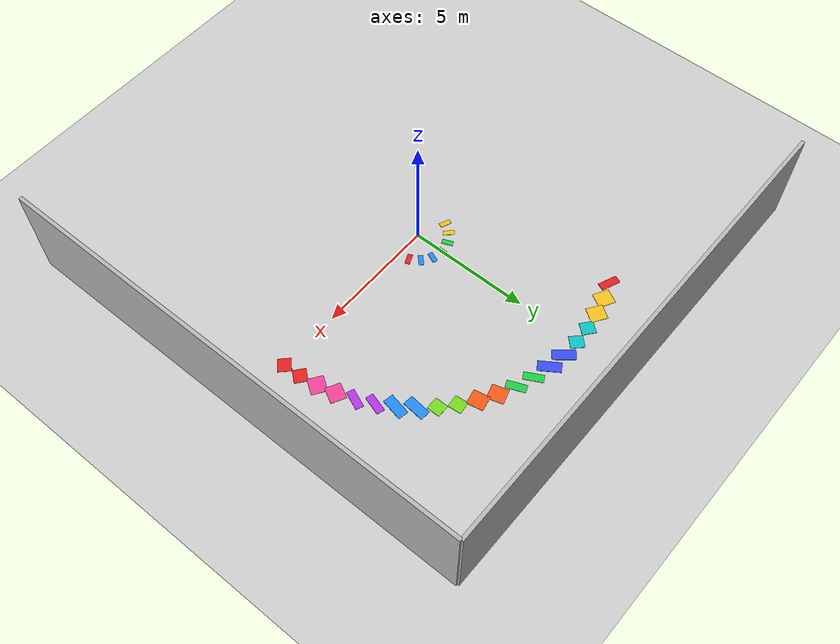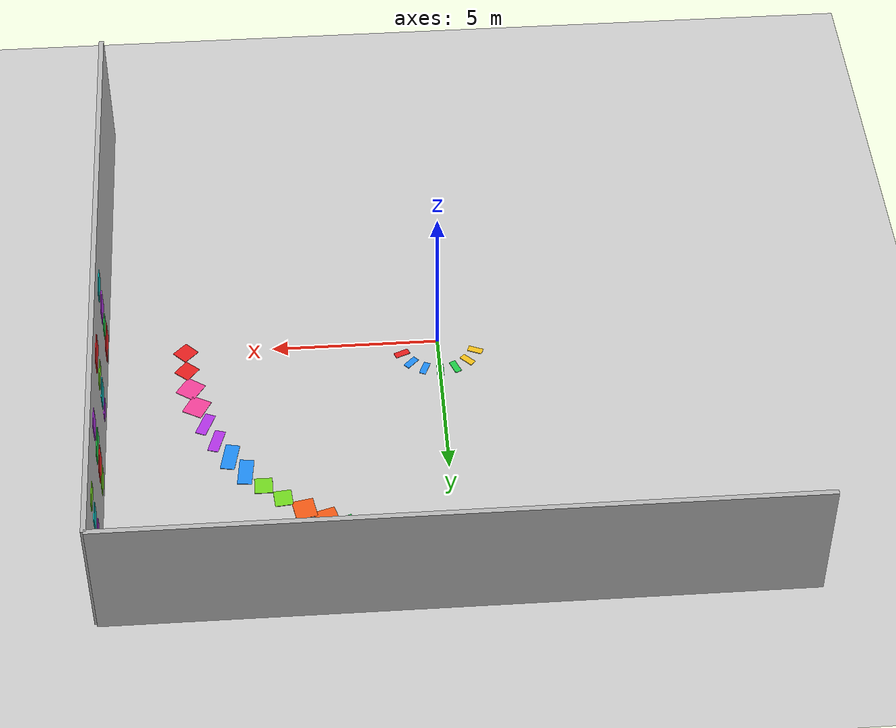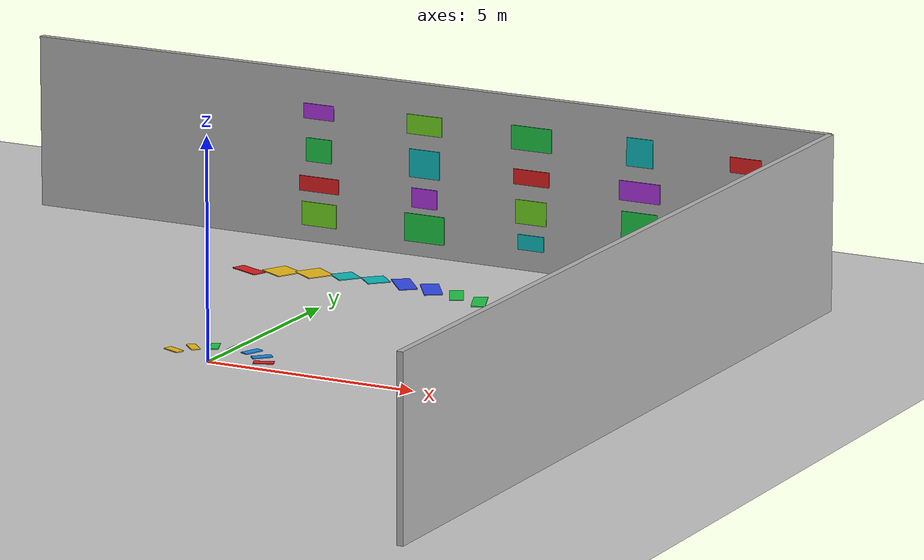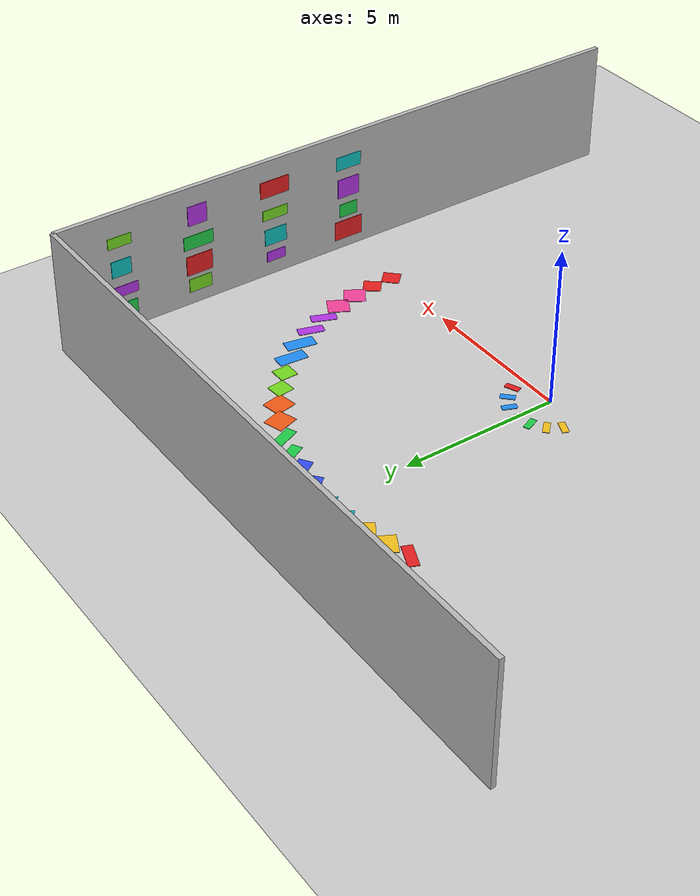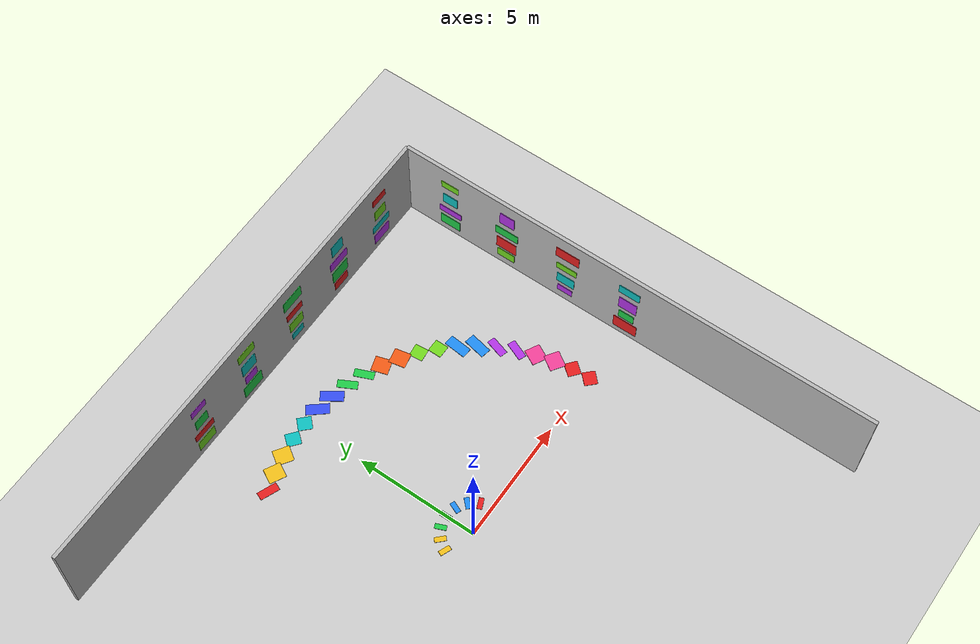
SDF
<sdf version="1.9">
 <world name="vio_marker_arena_double">
  <model name="ground_plane">
   <static>true</static>
   <link name="link">
    <collision name="collision">
     <geometry><plane><normal>0 0 1</normal><size>1 1</size></plane></geometry>
    </collision>
    <visual name="visual">
     <geometry><plane><normal>0 0 1</normal><size>500 500</size></plane></geometry>
     <material>
      <ambient>0.8 0.8 0.8 1</ambient>
      <diffuse>0.8 0.8 0.8 1</diffuse>
      <specular>0.8 0.8 0.8 1</specular>
     </material>
    </visual>
    <inertial>
     <mass>1</mass>
     <inertia><ixx>1</ixx><ixy>0</ixy><ixz>0</ixz><iyy>1</iyy><iyz>0</iyz><izz>1</izz></inertia>
    </inertial>
   </link>
  </model>
  <model name="vio_wall_north">
   <static>true</static>
   <pose>0.0000 10.0000 2.0000 0.0000 0.0000 0.0000</pose>
   <link name="link">
    <collision name="collision"><geometry><box><size>20.0000 0.1500 4.0000</size></box></geometry></collision>
    <visual name="visual">
     <geometry><box><size>20.0000 0.1500 4.0000</size></box></geometry>
     <material>
      <ambient>0.720 0.720 0.720 1.000</ambient>
      <diffuse>0.720 0.720 0.720 1.000</diffuse>
      <specular>0.10 0.10 0.10 1</specular>
      <emissive>0 0 0 1</emissive>
     </material>
    </visual>
   </link>
  </model>
  <model name="vio_wall_east">
   <static>true</static>
   <pose>10.0000 0.0000 2.0000 0.0000 0.0000 0.0000</pose>
   <link name="link">
    <collision name="collision"><geometry><box><size>0.1500 20.0000 4.0000</size></box></geometry></collision>
    <visual name="visual">
     <geometry><box><size>0.1500 20.0000 4.0000</size></box></geometry>
     <material>
      <ambient>0.720 0.720 0.720 1.000</ambient>
      <diffuse>0.720 0.720 0.720 1.000</diffuse>
      <specular>0.10 0.10 0.10 1</specular>
      <emissive>0 0 0 1</emissive>
     </material>
    </visual>
   </link>
  </model>
  <model name="vio_panel_north_0_2">
   <static>true</static>
   <pose>-2.7000 9.9190 0.6500 0.0000 0.0000 0.0000</pose>
   <link name="link">
    <visual name="visual">
     <geometry><box><size>0.8900 0.0350 0.5500</size></box></geometry>
     <material>
      <ambient>0.450 0.850 0.120 1.000</ambient>
      <diffuse>0.450 0.850 0.120 1.000</diffuse>
      <specular>0.10 0.10 0.10 1</specular>
      <emissive>0 0 0 1</emissive>
     </material>
    </visual>
   </link>
  </model>
  <model name="vio_panel_north_0_3">
   <static>true</static>
   <pose>0.0000 9.9190 0.6500 0.0000 0.0000 0.0000</pose>
   <link name="link">
    <visual name="visual">
     <geometry><box><size>1.0100 0.0350 0.6500</size></box></geometry>
     <material>
      <ambient>0.120 0.800 0.280 1.000</ambient>
      <diffuse>0.120 0.800 0.280 1.000</diffuse>
      <specular>0.10 0.10 0.10 1</specular>
      <emissive>0 0 0 1</emissive>
     </material>
    </visual>
   </link>
  </model>
  <model name="vio_panel_north_0_4">
   <static>true</static>
   <pose>2.7000 9.9190 0.6500 0.0000 0.0000 0.0000</pose>
   <link name="link">
    <visual name="visual">
     <geometry><box><size>0.6500 0.0350 0.3500</size></box></geometry>
     <material>
      <ambient>0.050 0.750 0.750 1.000</ambient>
      <diffuse>0.050 0.750 0.750 1.000</diffuse>
      <specular>0.10 0.10 0.10 1</specular>
      <emissive>0 0 0 1</emissive>
     </material>
    </visual>
   </link>
  </model>
  <model name="vio_panel_north_0_5">
   <static>true</static>
   <pose>5.4000 9.9190 0.6500 0.0000 0.0000 0.0000</pose>
   <link name="link">
    <visual name="visual">
     <geometry><box><size>0.7700 0.0350 0.4500</size></box></geometry>
     <material>
      <ambient>0.900 0.120 0.120 1.000</ambient>
      <diffuse>0.900 0.120 0.120 1.000</diffuse>
      <specular>0.10 0.10 0.10 1</specular>
      <emissive>0 0 0 1</emissive>
     </material>
    </visual>
   </link>
  </model>
  <model name="vio_panel_north_0_6">
   <static>true</static>
   <pose>8.0000 9.9190 0.6500 0.0000 0.0000 0.0000</pose>
   <link name="link">
    <visual name="visual">
     <geometry><box><size>0.8900 0.0350 0.5500</size></box></geometry>
     <material>
      <ambient>0.700 0.200 0.900 1.000</ambient>
      <diffuse>0.700 0.200 0.900 1.000</diffuse>
      <specular>0.10 0.10 0.10 1</specular>
      <emissive>0 0 0 1</emissive>
     </material>
    </visual>
   </link>
  </model>
  <model name="vio_panel_north_1_2">
   <static>true</static>
   <pose>-2.7000 9.9190 1.3500 0.0000 0.0000 0.0000</pose>
   <link name="link">
    <visual name="visual">
     <geometry><box><size>1.0100 0.0350 0.3500</size></box></geometry>
     <material>
      <ambient>0.900 0.120 0.120 1.000</ambient>
      <diffuse>0.900 0.120 0.120 1.000</diffuse>
      <specular>0.10 0.10 0.10 1</specular>
      <emissive>0 0 0 1</emissive>
     </material>
    </visual>
   </link>
  </model>
  <model name="vio_panel_north_1_3">
   <static>true</static>
   <pose>0.0000 9.9190 1.3500 0.0000 0.0000 0.0000</pose>
   <link name="link">
    <visual name="visual">
     <geometry><box><size>0.6500 0.0350 0.4500</size></box></geometry>
     <material>
      <ambient>0.700 0.200 0.900 1.000</ambient>
      <diffuse>0.700 0.200 0.900 1.000</diffuse>
      <specular>0.10 0.10 0.10 1</specular>
      <emissive>0 0 0 1</emissive>
     </material>
    </visual>
   </link>
  </model>
  <model name="vio_panel_north_1_4">
   <static>true</static>
   <pose>2.7000 9.9190 1.3500 0.0000 0.0000 0.0000</pose>
   <link name="link">
    <visual name="visual">
     <geometry><box><size>0.7700 0.0350 0.5500</size></box></geometry>
     <material>
      <ambient>0.450 0.850 0.120 1.000</ambient>
      <diffuse>0.450 0.850 0.120 1.000</diffuse>
      <specular>0.10 0.10 0.10 1</specular>
      <emissive>0 0 0 1</emissive>
     </material>
    </visual>
   </link>
  </model>
  <model name="vio_panel_north_1_5">
   <static>true</static>
   <pose>5.4000 9.9190 1.3500 0.0000 0.0000 0.0000</pose>
   <link name="link">
    <visual name="visual">
     <geometry><box><size>0.8900 0.0350 0.6500</size></box></geometry>
     <material>
      <ambient>0.120 0.800 0.280 1.000</ambient>
      <diffuse>0.120 0.800 0.280 1.000</diffuse>
      <specular>0.10 0.10 0.10 1</specular>
      <emissive>0 0 0 1</emissive>
     </material>
    </visual>
   </link>
  </model>
  <model name="vio_panel_north_1_6">
   <static>true</static>
   <pose>8.0000 9.9190 1.3500 0.0000 0.0000 0.0000</pose>
   <link name="link">
    <visual name="visual">
     <geometry><box><size>1.0100 0.0350 0.3500</size></box></geometry>
     <material>
      <ambient>0.050 0.750 0.750 1.000</ambient>
      <diffuse>0.050 0.750 0.750 1.000</diffuse>
      <specular>0.10 0.10 0.10 1</specular>
      <emissive>0 0 0 1</emissive>
     </material>
    </visual>
   </link>
  </model>
  <model name="vio_panel_north_2_2">
   <static>true</static>
   <pose>-2.7000 9.9190 2.1500 0.0000 0.0000 0.0000</pose>
   <link name="link">
    <visual name="visual">
     <geometry><box><size>0.6500 0.0350 0.5500</size></box></geometry>
     <material>
      <ambient>0.120 0.800 0.280 1.000</ambient>
      <diffuse>0.120 0.800 0.280 1.000</diffuse>
      <specular>0.10 0.10 0.10 1</specular>
      <emissive>0 0 0 1</emissive>
     </material>
    </visual>
   </link>
  </model>
  <model name="vio_panel_north_2_3">
   <static>true</static>
   <pose>0.0000 9.9190 2.1500 0.0000 0.0000 0.0000</pose>
   <link name="link">
    <visual name="visual">
     <geometry><box><size>0.7700 0.0350 0.6500</size></box></geometry>
     <material>
      <ambient>0.050 0.750 0.750 1.000</ambient>
      <diffuse>0.050 0.750 0.750 1.000</diffuse>
      <specular>0.10 0.10 0.10 1</specular>
      <emissive>0 0 0 1</emissive>
     </material>
    </visual>
   </link>
  </model>
  <model name="vio_panel_north_2_4">
   <static>true</static>
   <pose>2.7000 9.9190 2.1500 0.0000 0.0000 0.0000</pose>
   <link name="link">
    <visual name="visual">
     <geometry><box><size>0.8900 0.0350 0.3500</size></box></geometry>
     <material>
      <ambient>0.900 0.120 0.120 1.000</ambient>
      <diffuse>0.900 0.120 0.120 1.000</diffuse>
      <specular>0.10 0.10 0.10 1</specular>
      <emissive>0 0 0 1</emissive>
     </material>
    </visual>
   </link>
  </model>
  <model name="vio_panel_north_2_5">
   <static>true</static>
   <pose>5.4000 9.9190 2.1500 0.0000 0.0000 0.0000</pose>
   <link name="link">
    <visual name="visual">
     <geometry><box><size>1.0100 0.0350 0.4500</size></box></geometry>
     <material>
      <ambient>0.700 0.200 0.900 1.000</ambient>
      <diffuse>0.700 0.200 0.900 1.000</diffuse>
      <specular>0.10 0.10 0.10 1</specular>
      <emissive>0 0 0 1</emissive>
     </material>
    </visual>
   </link>
  </model>
  <model name="vio_panel_north_2_6">
   <static>true</static>
   <pose>8.0000 9.9190 2.1500 0.0000 0.0000 0.0000</pose>
   <link name="link">
    <visual name="visual">
     <geometry><box><size>0.6500 0.0350 0.5500</size></box></geometry>
     <material>
      <ambient>0.450 0.850 0.120 1.000</ambient>
      <diffuse>0.450 0.850 0.120 1.000</diffuse>
      <specular>0.10 0.10 0.10 1</specular>
      <emissive>0 0 0 1</emissive>
     </material>
    </visual>
   </link>
  </model>
  <model name="vio_panel_north_3_2">
   <static>true</static>
   <pose>-2.7000 9.9190 3.0500 0.0000 0.0000 0.0000</pose>
   <link name="link">
    <visual name="visual">
     <geometry><box><size>0.7700 0.0350 0.3500</size></box></geometry>
     <material>
      <ambient>0.700 0.200 0.900 1.000</ambient>
      <diffuse>0.700 0.200 0.900 1.000</diffuse>
      <specular>0.10 0.10 0.10 1</specular>
      <emissive>0 0 0 1</emissive>
     </material>
    </visual>
   </link>
  </model>
  <model name="vio_panel_north_3_3">
   <static>true</static>
   <pose>0.0000 9.9190 3.0500 0.0000 0.0000 0.0000</pose>
   <link name="link">
    <visual name="visual">
     <geometry><box><size>0.8900 0.0350 0.4500</size></box></geometry>
     <material>
      <ambient>0.450 0.850 0.120 1.000</ambient>
      <diffuse>0.450 0.850 0.120 1.000</diffuse>
      <specular>0.10 0.10 0.10 1</specular>
      <emissive>0 0 0 1</emissive>
     </material>
    </visual>
   </link>
  </model>
  <model name="vio_panel_north_3_4">
   <static>true</static>
   <pose>2.7000 9.9190 3.0500 0.0000 0.0000 0.0000</pose>
   <link name="link">
    <visual name="visual">
     <geometry><box><size>1.0100 0.0350 0.5500</size></box></geometry>
     <material>
      <ambient>0.120 0.800 0.280 1.000</ambient>
      <diffuse>0.120 0.800 0.280 1.000</diffuse>
      <specular>0.10 0.10 0.10 1</specular>
      <emissive>0 0 0 1</emissive>
     </material>
    </visual>
   </link>
  </model>
  <model name="vio_panel_north_3_5">
   <static>true</static>
   <pose>5.4000 9.9190 3.0500 0.0000 0.0000 0.0000</pose>
   <link name="link">
    <visual name="visual">
     <geometry><box><size>0.6500 0.0350 0.6500</size></box></geometry>
     <material>
      <ambient>0.050 0.750 0.750 1.000</ambient>
      <diffuse>0.050 0.750 0.750 1.000</diffuse>
      <specular>0.10 0.10 0.10 1</specular>
      <emissive>0 0 0 1</emissive>
     </material>
    </visual>
   </link>
  </model>
  <model name="vio_panel_north_3_6">
   <static>true</static>
   <pose>8.0000 9.9190 3.0500 0.0000 0.0000 0.0000</pose>
   <link name="link">
    <visual name="visual">
     <geometry><box><size>0.7700 0.0350 0.3500</size></box></geometry>
     <material>
      <ambient>0.900 0.120 0.120 1.000</ambient>
      <diffuse>0.900 0.120 0.120 1.000</diffuse>
      <specular>0.10 0.10 0.10 1</specular>
      <emissive>0 0 0 1</emissive>
     </material>
    </visual>
   </link>
  </model>
  <model name="vio_panel_east_0_3">
   <static>true</static>
   <pose>9.9190 0.0000 0.6500 0.0000 0.0000 0.0000</pose>
   <link name="link">
    <visual name="visual">
     <geometry><box><size>0.0350 1.0100 0.6500</size></box></geometry>
     <material>
      <ambient>0.900 0.120 0.120 1.000</ambient>
      <diffuse>0.900 0.120 0.120 1.000</diffuse>
      <specular>0.10 0.10 0.10 1</specular>
      <emissive>0 0 0 1</emissive>
     </material>
    </visual>
   </link>
  </model>
  <model name="vio_panel_east_0_4">
   <static>true</static>
   <pose>9.9190 2.7000 0.6500 0.0000 0.0000 0.0000</pose>
   <link name="link">
    <visual name="visual">
     <geometry><box><size>0.0350 0.6500 0.3500</size></box></geometry>
     <material>
      <ambient>0.700 0.200 0.900 1.000</ambient>
      <diffuse>0.700 0.200 0.900 1.000</diffuse>
      <specular>0.10 0.10 0.10 1</specular>
      <emissive>0 0 0 1</emissive>
     </material>
    </visual>
   </link>
  </model>
  <model name="vio_panel_east_0_5">
   <static>true</static>
   <pose>9.9190 5.4000 0.6500 0.0000 0.0000 0.0000</pose>
   <link name="link">
    <visual name="visual">
     <geometry><box><size>0.0350 0.7700 0.4500</size></box></geometry>
     <material>
      <ambient>0.450 0.850 0.120 1.000</ambient>
      <diffuse>0.450 0.850 0.120 1.000</diffuse>
      <specular>0.10 0.10 0.10 1</specular>
      <emissive>0 0 0 1</emissive>
     </material>
    </visual>
   </link>
  </model>
  <model name="vio_panel_east_0_6">
   <static>true</static>
   <pose>9.9190 8.0000 0.6500 0.0000 0.0000 0.0000</pose>
   <link name="link">
    <visual name="visual">
     <geometry><box><size>0.0350 0.8900 0.5500</size></box></geometry>
     <material>
      <ambient>0.120 0.800 0.280 1.000</ambient>
      <diffuse>0.120 0.800 0.280 1.000</diffuse>
      <specular>0.10 0.10 0.10 1</specular>
      <emissive>0 0 0 1</emissive>
     </material>
    </visual>
   </link>
  </model>
  <model name="vio_panel_east_1_3">
   <static>true</static>
   <pose>9.9190 0.0000 1.3500 0.0000 0.0000 0.0000</pose>
   <link name="link">
    <visual name="visual">
     <geometry><box><size>0.0350 0.6500 0.4500</size></box></geometry>
     <material>
      <ambient>0.120 0.800 0.280 1.000</ambient>
      <diffuse>0.120 0.800 0.280 1.000</diffuse>
      <specular>0.10 0.10 0.10 1</specular>
      <emissive>0 0 0 1</emissive>
     </material>
    </visual>
   </link>
  </model>
  <model name="vio_panel_east_1_4">
   <static>true</static>
   <pose>9.9190 2.7000 1.3500 0.0000 0.0000 0.0000</pose>
   <link name="link">
    <visual name="visual">
     <geometry><box><size>0.0350 0.7700 0.5500</size></box></geometry>
     <material>
      <ambient>0.050 0.750 0.750 1.000</ambient>
      <diffuse>0.050 0.750 0.750 1.000</diffuse>
      <specular>0.10 0.10 0.10 1</specular>
      <emissive>0 0 0 1</emissive>
     </material>
    </visual>
   </link>
  </model>
  <model name="vio_panel_east_1_5">
   <static>true</static>
   <pose>9.9190 5.4000 1.3500 0.0000 0.0000 0.0000</pose>
   <link name="link">
    <visual name="visual">
     <geometry><box><size>0.0350 0.8900 0.6500</size></box></geometry>
     <material>
      <ambient>0.900 0.120 0.120 1.000</ambient>
      <diffuse>0.900 0.120 0.120 1.000</diffuse>
      <specular>0.10 0.10 0.10 1</specular>
      <emissive>0 0 0 1</emissive>
     </material>
    </visual>
   </link>
  </model>
  <model name="vio_panel_east_1_6">
   <static>true</static>
   <pose>9.9190 8.0000 1.3500 0.0000 0.0000 0.0000</pose>
   <link name="link">
    <visual name="visual">
     <geometry><box><size>0.0350 1.0100 0.3500</size></box></geometry>
     <material>
      <ambient>0.700 0.200 0.900 1.000</ambient>
      <diffuse>0.700 0.200 0.900 1.000</diffuse>
      <specular>0.10 0.10 0.10 1</specular>
      <emissive>0 0 0 1</emissive>
     </material>
    </visual>
   </link>
  </model>
  <model name="vio_panel_east_2_3">
   <static>true</static>
   <pose>9.9190 0.0000 2.1500 0.0000 0.0000 0.0000</pose>
   <link name="link">
    <visual name="visual">
     <geometry><box><size>0.0350 0.7700 0.6500</size></box></geometry>
     <material>
      <ambient>0.700 0.200 0.900 1.000</ambient>
      <diffuse>0.700 0.200 0.900 1.000</diffuse>
      <specular>0.10 0.10 0.10 1</specular>
      <emissive>0 0 0 1</emissive>
     </material>
    </visual>
   </link>
  </model>
  <model name="vio_panel_east_2_4">
   <static>true</static>
   <pose>9.9190 2.7000 2.1500 0.0000 0.0000 0.0000</pose>
   <link name="link">
    <visual name="visual">
     <geometry><box><size>0.0350 0.8900 0.3500</size></box></geometry>
     <material>
      <ambient>0.450 0.850 0.120 1.000</ambient>
      <diffuse>0.450 0.850 0.120 1.000</diffuse>
      <specular>0.10 0.10 0.10 1</specular>
      <emissive>0 0 0 1</emissive>
     </material>
    </visual>
   </link>
  </model>
  <model name="vio_panel_east_2_5">
   <static>true</static>
   <pose>9.9190 5.4000 2.1500 0.0000 0.0000 0.0000</pose>
   <link name="link">
    <visual name="visual">
     <geometry><box><size>0.0350 1.0100 0.4500</size></box></geometry>
     <material>
      <ambient>0.120 0.800 0.280 1.000</ambient>
      <diffuse>0.120 0.800 0.280 1.000</diffuse>
      <specular>0.10 0.10 0.10 1</specular>
      <emissive>0 0 0 1</emissive>
     </material>
    </visual>
   </link>
  </model>
  <model name="vio_panel_east_2_6">
   <static>true</static>
   <pose>9.9190 8.0000 2.1500 0.0000 0.0000 0.0000</pose>
   <link name="link">
    <visual name="visual">
     <geometry><box><size>0.0350 0.6500 0.5500</size></box></geometry>
     <material>
      <ambient>0.050 0.750 0.750 1.000</ambient>
      <diffuse>0.050 0.750 0.750 1.000</diffuse>
      <specular>0.10 0.10 0.10 1</specular>
      <emissive>0 0 0 1</emissive>
     </material>
    </visual>
   </link>
  </model>
  <model name="vio_panel_east_3_3">
   <static>true</static>
   <pose>9.9190 0.0000 3.0500 0.0000 0.0000 0.0000</pose>
   <link name="link">
    <visual name="visual">
     <geometry><box><size>0.0350 0.8900 0.4500</size></box></geometry>
     <material>
      <ambient>0.050 0.750 0.750 1.000</ambient>
      <diffuse>0.050 0.750 0.750 1.000</diffuse>
      <specular>0.10 0.10 0.10 1</specular>
      <emissive>0 0 0 1</emissive>
     </material>
    </visual>
   </link>
  </model>
  <model name="vio_panel_east_3_4">
   <static>true</static>
   <pose>9.9190 2.7000 3.0500 0.0000 0.0000 0.0000</pose>
   <link name="link">
    <visual name="visual">
     <geometry><box><size>0.0350 1.0100 0.5500</size></box></geometry>
     <material>
      <ambient>0.900 0.120 0.120 1.000</ambient>
      <diffuse>0.900 0.120 0.120 1.000</diffuse>
      <specular>0.10 0.10 0.10 1</specular>
      <emissive>0 0 0 1</emissive>
     </material>
    </visual>
   </link>
  </model>
  <model name="vio_panel_east_3_5">
   <static>true</static>
   <pose>9.9190 5.4000 3.0500 0.0000 0.0000 0.0000</pose>
   <link name="link">
    <visual name="visual">
     <geometry><box><size>0.0350 0.6500 0.6500</size></box></geometry>
     <material>
      <ambient>0.700 0.200 0.900 1.000</ambient>
      <diffuse>0.700 0.200 0.900 1.000</diffuse>
      <specular>0.10 0.10 0.10 1</specular>
      <emissive>0 0 0 1</emissive>
     </material>
    </visual>
   </link>
  </model>
  <model name="vio_panel_east_3_6">
   <static>true</static>
   <pose>9.9190 8.0000 3.0500 0.0000 0.0000 0.0000</pose>
   <link name="link">
    <visual name="visual">
     <geometry><box><size>0.0350 0.7700 0.3500</size></box></geometry>
     <material>
      <ambient>0.450 0.850 0.120 1.000</ambient>
      <diffuse>0.450 0.850 0.120 1.000</diffuse>
      <specular>0.10 0.10 0.10 1</specular>
      <emissive>0 0 0 1</emissive>
     </material>
    </visual>
   </link>
  </model>
  <model name="vio_floor_marker_00">
   <static>true</static>
   <pose>7.6000 0.0000 0.0120 0.0000 0.0000 0.7854</pose>
   <link name="link">
    <visual name="visual">
     <geometry><box><size>0.5500 0.5200 0.0180</size></box></geometry>
     <material>
      <ambient>0.900 0.120 0.120 1.000</ambient>
      <diffuse>0.900 0.120 0.120 1.000</diffuse>
      <specular>0.10 0.10 0.10 1</specular>
      <emissive>0 0 0 1</emissive>
     </material>
    </visual>
   </link>
  </model>
  <model name="vio_floor_marker_01">
   <static>true</static>
   <pose>7.4540 1.4827 0.0120 0.0000 0.0000 0.9817</pose>
   <link name="link">
    <visual name="visual">
     <geometry><box><size>0.6700 0.6200 0.0180</size></box></geometry>
     <material>
      <ambient>0.950 0.250 0.600 1.000</ambient>
      <diffuse>0.950 0.250 0.600 1.000</diffuse>
      <specular>0.10 0.10 0.10 1</specular>
      <emissive>0 0 0 1</emissive>
     </material>
    </visual>
   </link>
  </model>
  <model name="vio_floor_marker_02">
   <static>true</static>
   <pose>7.0215 2.9084 0.0120 0.0000 0.0000 1.1781</pose>
   <link name="link">
    <visual name="visual">
     <geometry><box><size>0.7900 0.3200 0.0180</size></box></geometry>
     <material>
      <ambient>0.700 0.200 0.900 1.000</ambient>
      <diffuse>0.700 0.200 0.900 1.000</diffuse>
      <specular>0.10 0.10 0.10 1</specular>
      <emissive>0 0 0 1</emissive>
     </material>
    </visual>
   </link>
  </model>
  <model name="vio_floor_marker_03">
   <static>true</static>
   <pose>6.3192 4.2223 0.0120 0.0000 0.0000 1.3744</pose>
   <link name="link">
    <visual name="visual">
     <geometry><box><size>0.9100 0.4200 0.0180</size></box></geometry>
     <material>
      <ambient>0.120 0.550 0.950 1.000</ambient>
      <diffuse>0.120 0.550 0.950 1.000</diffuse>
      <specular>0.10 0.10 0.10 1</specular>
      <emissive>0 0 0 1</emissive>
     </material>
    </visual>
   </link>
  </model>
  <model name="vio_floor_marker_04">
   <static>true</static>
   <pose>5.3740 5.3740 0.0120 0.0000 0.0000 1.5708</pose>
   <link name="link">
    <visual name="visual">
     <geometry><box><size>0.5500 0.5200 0.0180</size></box></geometry>
     <material>
      <ambient>0.450 0.850 0.120 1.000</ambient>
      <diffuse>0.450 0.850 0.120 1.000</diffuse>
      <specular>0.10 0.10 0.10 1</specular>
      <emissive>0 0 0 1</emissive>
     </material>
    </visual>
   </link>
  </model>
  <model name="vio_floor_marker_05">
   <static>true</static>
   <pose>4.2223 6.3192 0.0120 0.0000 0.0000 1.7671</pose>
   <link name="link">
    <visual name="visual">
     <geometry><box><size>0.6700 0.6200 0.0180</size></box></geometry>
     <material>
      <ambient>0.950 0.350 0.080 1.000</ambient>
      <diffuse>0.950 0.350 0.080 1.000</diffuse>
      <specular>0.10 0.10 0.10 1</specular>
      <emissive>0 0 0 1</emissive>
     </material>
    </visual>
   </link>
  </model>
  <model name="vio_floor_marker_06">
   <static>true</static>
   <pose>2.9084 7.0215 0.0120 0.0000 0.0000 1.9635</pose>
   <link name="link">
    <visual name="visual">
     <geometry><box><size>0.7900 0.3200 0.0180</size></box></geometry>
     <material>
      <ambient>0.120 0.800 0.280 1.000</ambient>
      <diffuse>0.120 0.800 0.280 1.000</diffuse>
      <specular>0.10 0.10 0.10 1</specular>
      <emissive>0 0 0 1</emissive>
     </material>
    </visual>
   </link>
  </model>
  <model name="vio_floor_marker_07">
   <static>true</static>
   <pose>1.4827 7.4540 0.0120 0.0000 0.0000 2.1598</pose>
   <link name="link">
    <visual name="visual">
     <geometry><box><size>0.9100 0.4200 0.0180</size></box></geometry>
     <material>
      <ambient>0.200 0.300 0.950 1.000</ambient>
      <diffuse>0.200 0.300 0.950 1.000</diffuse>
      <specular>0.10 0.10 0.10 1</specular>
      <emissive>0 0 0 1</emissive>
     </material>
    </visual>
   </link>
  </model>
  <model name="vio_floor_marker_08">
   <static>true</static>
   <pose>0.0000 7.6000 0.0120 0.0000 0.0000 2.3562</pose>
   <link name="link">
    <visual name="visual">
     <geometry><box><size>0.5500 0.5200 0.0180</size></box></geometry>
     <material>
      <ambient>0.050 0.750 0.750 1.000</ambient>
      <diffuse>0.050 0.750 0.750 1.000</diffuse>
      <specular>0.10 0.10 0.10 1</specular>
      <emissive>0 0 0 1</emissive>
     </material>
    </visual>
   </link>
  </model>
  <model name="vio_floor_marker_09">
   <static>true</static>
   <pose>-1.4827 7.4540 0.0120 0.0000 0.0000 2.5525</pose>
   <link name="link">
    <visual name="visual">
     <geometry><box><size>0.6700 0.6200 0.0180</size></box></geometry>
     <material>
      <ambient>0.950 0.750 0.100 1.000</ambient>
      <diffuse>0.950 0.750 0.100 1.000</diffuse>
      <specular>0.10 0.10 0.10 1</specular>
      <emissive>0 0 0 1</emissive>
     </material>
    </visual>
   </link>
  </model>
  <model name="vio_floor_marker_10">
   <static>true</static>
   <pose>-2.9084 7.0215 0.0120 0.0000 0.0000 2.7489</pose>
   <link name="link">
    <visual name="visual">
     <geometry><box><size>0.7900 0.3200 0.0180</size></box></geometry>
     <material>
      <ambient>0.900 0.120 0.120 1.000</ambient>
      <diffuse>0.900 0.120 0.120 1.000</diffuse>
      <specular>0.10 0.10 0.10 1</specular>
      <emissive>0 0 0 1</emissive>
     </material>
    </visual>
   </link>
  </model>
  <model name="vio_center_marker_1">
   <static>true</static>
   <pose>0.8485 0.8485 0.0130 0.0000 0.0000 0.7854</pose>
   <link name="link">
    <visual name="visual">
     <geometry><box><size>0.4500 0.2000 0.0200</size></box></geometry>
     <material>
      <ambient>0.120 0.550 0.950 1.000</ambient>
      <diffuse>0.120 0.550 0.950 1.000</diffuse>
      <specular>0.10 0.10 0.10 1</specular>
      <emissive>0 0 0 1</emissive>
     </material>
    </visual>
   </link>
  </model>
  <model name="vio_center_marker_2">
   <static>true</static>
   <pose>0.0000 1.2000 0.0130 0.0000 0.0000 1.5708</pose>
   <link name="link">
    <visual name="visual">
     <geometry><box><size>0.4500 0.2000 0.0200</size></box></geometry>
     <material>
      <ambient>0.120 0.800 0.280 1.000</ambient>
      <diffuse>0.120 0.800 0.280 1.000</diffuse>
      <specular>0.10 0.10 0.10 1</specular>
      <emissive>0 0 0 1</emissive>
     </material>
    </visual>
   </link>
  </model>
  <model name="vio_center_marker_3">
   <static>true</static>
   <pose>-0.8485 0.8485 0.0130 0.0000 0.0000 2.3562</pose>
   <link name="link">
    <visual name="visual">
     <geometry><box><size>0.4500 0.2000 0.0200</size></box></geometry>
     <material>
      <ambient>0.950 0.750 0.100 1.000</ambient>
      <diffuse>0.950 0.750 0.100 1.000</diffuse>
      <specular>0.10 0.10 0.10 1</specular>
      <emissive>0 0 0 1</emissive>
     </material>
    </visual>
   </link>
  </model>
  <model name="vio_floor_marker_extra_00">
   <static>true</static>
   <pose>7.5634 0.7449 0.0120 0.0000 0.0000 0.8836</pose>
   <link name="link">
    <visual name="visual">
     <geometry><box><size>0.5500 0.5200 0.0180</size></box></geometry>
     <material>
      <ambient>0.900 0.120 0.120 1.000</ambient>
      <diffuse>0.900 0.120 0.120 1.000</diffuse>
      <specular>0.10 0.10 0.10 1</specular>
      <emissive>0 0 0 1</emissive>
     </material>
    </visual>
   </link>
  </model>
  <model name="vio_floor_marker_extra_01">
   <static>true</static>
   <pose>7.2727 2.2062 0.0120 0.0000 0.0000 1.0799</pose>
   <link name="link">
    <visual name="visual">
     <geometry><box><size>0.6700 0.6200 0.0180</size></box></geometry>
     <material>
      <ambient>0.950 0.250 0.600 1.000</ambient>
      <diffuse>0.950 0.250 0.600 1.000</diffuse>
      <specular>0.10 0.10 0.10 1</specular>
      <emissive>0 0 0 1</emissive>
     </material>
    </visual>
   </link>
  </model>
  <model name="vio_floor_marker_extra_02">
   <static>true</static>
   <pose>6.7026 3.5826 0.0120 0.0000 0.0000 1.2763</pose>
   <link name="link">
    <visual name="visual">
     <geometry><box><size>0.7900 0.3200 0.0180</size></box></geometry>
     <material>
      <ambient>0.700 0.200 0.900 1.000</ambient>
      <diffuse>0.700 0.200 0.900 1.000</diffuse>
      <specular>0.10 0.10 0.10 1</specular>
      <emissive>0 0 0 1</emissive>
     </material>
    </visual>
   </link>
  </model>
  <model name="vio_floor_marker_extra_03">
   <static>true</static>
   <pose>5.8749 4.8214 0.0120 0.0000 0.0000 1.4726</pose>
   <link name="link">
    <visual name="visual">
     <geometry><box><size>0.9100 0.4200 0.0180</size></box></geometry>
     <material>
      <ambient>0.120 0.550 0.950 1.000</ambient>
      <diffuse>0.120 0.550 0.950 1.000</diffuse>
      <specular>0.10 0.10 0.10 1</specular>
      <emissive>0 0 0 1</emissive>
     </material>
    </visual>
   </link>
  </model>
  <model name="vio_floor_marker_extra_04">
   <static>true</static>
   <pose>4.8214 5.8749 0.0120 0.0000 0.0000 1.6690</pose>
   <link name="link">
    <visual name="visual">
     <geometry><box><size>0.5500 0.5200 0.0180</size></box></geometry>
     <material>
      <ambient>0.450 0.850 0.120 1.000</ambient>
      <diffuse>0.450 0.850 0.120 1.000</diffuse>
      <specular>0.10 0.10 0.10 1</specular>
      <emissive>0 0 0 1</emissive>
     </material>
    </visual>
   </link>
  </model>
  <model name="vio_floor_marker_extra_05">
   <static>true</static>
   <pose>3.5826 6.7026 0.0120 0.0000 0.0000 1.8653</pose>
   <link name="link">
    <visual name="visual">
     <geometry><box><size>0.6700 0.6200 0.0180</size></box></geometry>
     <material>
      <ambient>0.950 0.350 0.080 1.000</ambient>
      <diffuse>0.950 0.350 0.080 1.000</diffuse>
      <specular>0.10 0.10 0.10 1</specular>
      <emissive>0 0 0 1</emissive>
     </material>
    </visual>
   </link>
  </model>
  <model name="vio_floor_marker_extra_06">
   <static>true</static>
   <pose>2.2062 7.2727 0.0120 0.0000 0.0000 2.0617</pose>
   <link name="link">
    <visual name="visual">
     <geometry><box><size>0.7900 0.3200 0.0180</size></box></geometry>
     <material>
      <ambient>0.120 0.800 0.280 1.000</ambient>
      <diffuse>0.120 0.800 0.280 1.000</diffuse>
      <specular>0.10 0.10 0.10 1</specular>
      <emissive>0 0 0 1</emissive>
     </material>
    </visual>
   </link>
  </model>
  <model name="vio_floor_marker_extra_07">
   <static>true</static>
   <pose>0.7449 7.5634 0.0120 0.0000 0.0000 2.2580</pose>
   <link name="link">
    <visual name="visual">
     <geometry><box><size>0.9100 0.4200 0.0180</size></box></geometry>
     <material>
      <ambient>0.200 0.300 0.950 1.000</ambient>
      <diffuse>0.200 0.300 0.950 1.000</diffuse>
      <specular>0.10 0.10 0.10 1</specular>
      <emissive>0 0 0 1</emissive>
     </material>
    </visual>
   </link>
  </model>
  <model name="vio_floor_marker_extra_08">
   <static>true</static>
   <pose>-0.7449 7.5634 0.0120 0.0000 0.0000 2.4544</pose>
   <link name="link">
    <visual name="visual">
     <geometry><box><size>0.5500 0.5200 0.0180</size></box></geometry>
     <material>
      <ambient>0.050 0.750 0.750 1.000</ambient>
      <diffuse>0.050 0.750 0.750 1.000</diffuse>
      <specular>0.10 0.10 0.10 1</specular>
      <emissive>0 0 0 1</emissive>
     </material>
    </visual>
   </link>
  </model>
  <model name="vio_floor_marker_extra_09">
   <static>true</static>
   <pose>-2.2062 7.2727 0.0120 0.0000 0.0000 2.6507</pose>
   <link name="link">
    <visual name="visual">
     <geometry><box><size>0.6700 0.6200 0.0180</size></box></geometry>
     <material>
      <ambient>0.950 0.750 0.100 1.000</ambient>
      <diffuse>0.950 0.750 0.100 1.000</diffuse>
      <specular>0.10 0.10 0.10 1</specular>
      <emissive>0 0 0 1</emissive>
     </material>
    </visual>
   </link>
  </model>
  <model name="vio_center_marker_extra_0">
   <static>true</static>
   <pose>1.1087 0.4592 0.0130 0.0000 0.0000 0.3927</pose>
   <link name="link">
    <visual name="visual">
     <geometry><box><size>0.4500 0.2000 0.0200</size></box></geometry>
     <material>
      <ambient>0.900 0.120 0.120 1.000</ambient>
      <diffuse>0.900 0.120 0.120 1.000</diffuse>
      <specular>0.10 0.10 0.10 1</specular>
      <emissive>0 0 0 1</emissive>
     </material>
    </visual>
   </link>
  </model>
  <model name="vio_center_marker_extra_1">
   <static>true</static>
   <pose>0.4592 1.1087 0.0130 0.0000 0.0000 1.1781</pose>
   <link name="link">
    <visual name="visual">
     <geometry><box><size>0.4500 0.2000 0.0200</size></box></geometry>
     <material>
      <ambient>0.120 0.550 0.950 1.000</ambient>
      <diffuse>0.120 0.550 0.950 1.000</diffuse>
      <specular>0.10 0.10 0.10 1</specular>
      <emissive>0 0 0 1</emissive>
     </material>
    </visual>
   </link>
  </model>
  <model name="vio_center_marker_extra_2">
   <static>true</static>
   <pose>-0.4592 1.1087 0.0130 0.0000 0.0000 1.9635</pose>
   <link name="link">
    <visual name="visual">
     <geometry><box><size>0.4500 0.2000 0.0200</size></box></geometry>
     <material>
      <ambient>0.120 0.800 0.280 1.000</ambient>
      <diffuse>0.120 0.800 0.280 1.000</diffuse>
      <specular>0.10 0.10 0.10 1</specular>
      <emissive>0 0 0 1</emissive>
     </material>
    </visual>
   </link>
  </model>
  <model name="vio_center_marker_extra_3">
   <static>true</static>
   <pose>-1.1087 0.4592 0.0130 0.0000 0.0000 2.7489</pose>
   <link name="link">
    <visual name="visual">
     <geometry><box><size>0.4500 0.2000 0.0200</size></box></geometry>
     <material>
      <ambient>0.950 0.750 0.100 1.000</ambient>
      <diffuse>0.950 0.750 0.100 1.000</diffuse>
      <specular>0.10 0.10 0.10 1</specular>
      <emissive>0 0 0 1</emissive>
     </material>
    </visual>
   </link>
  </model>
 </world>
</sdf>
